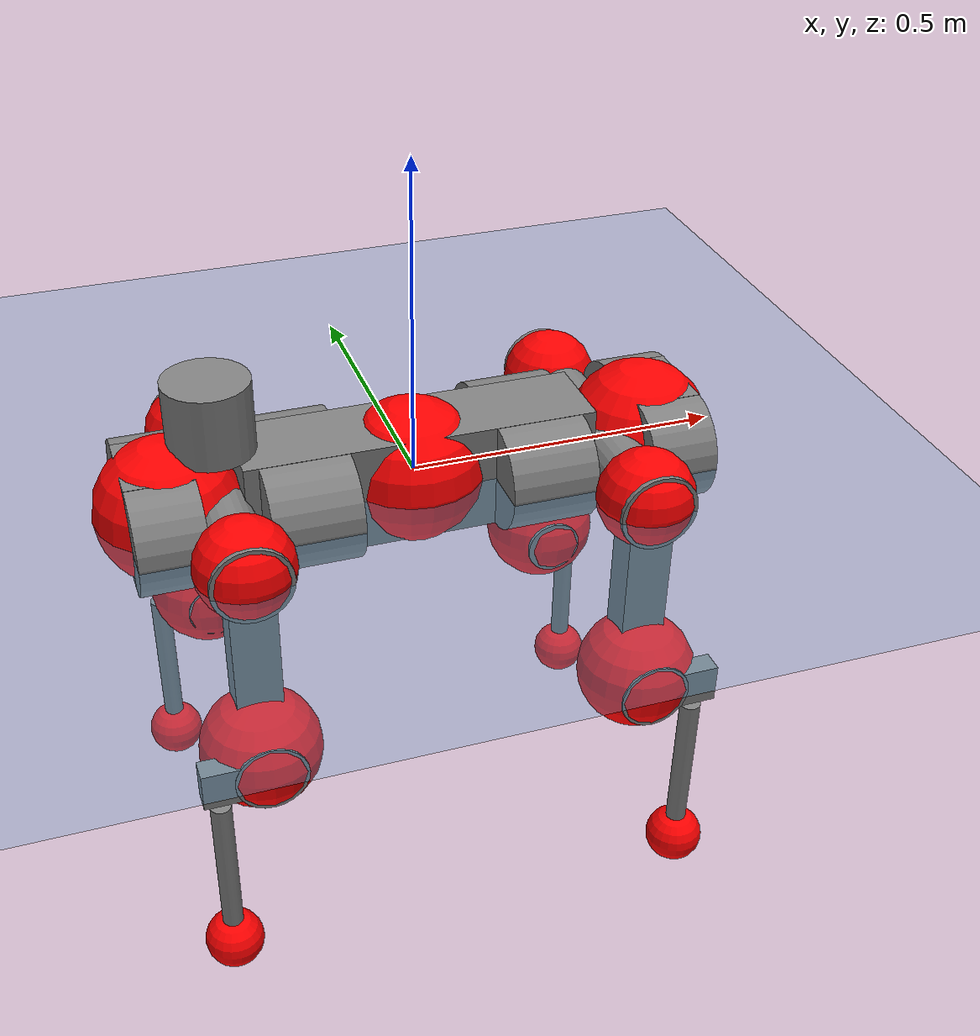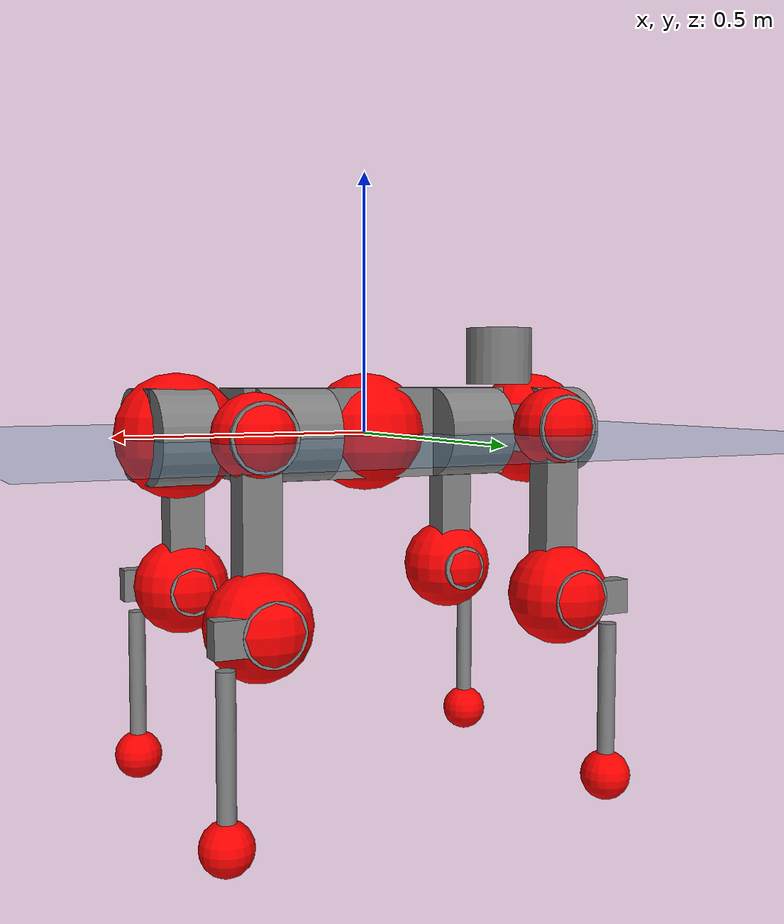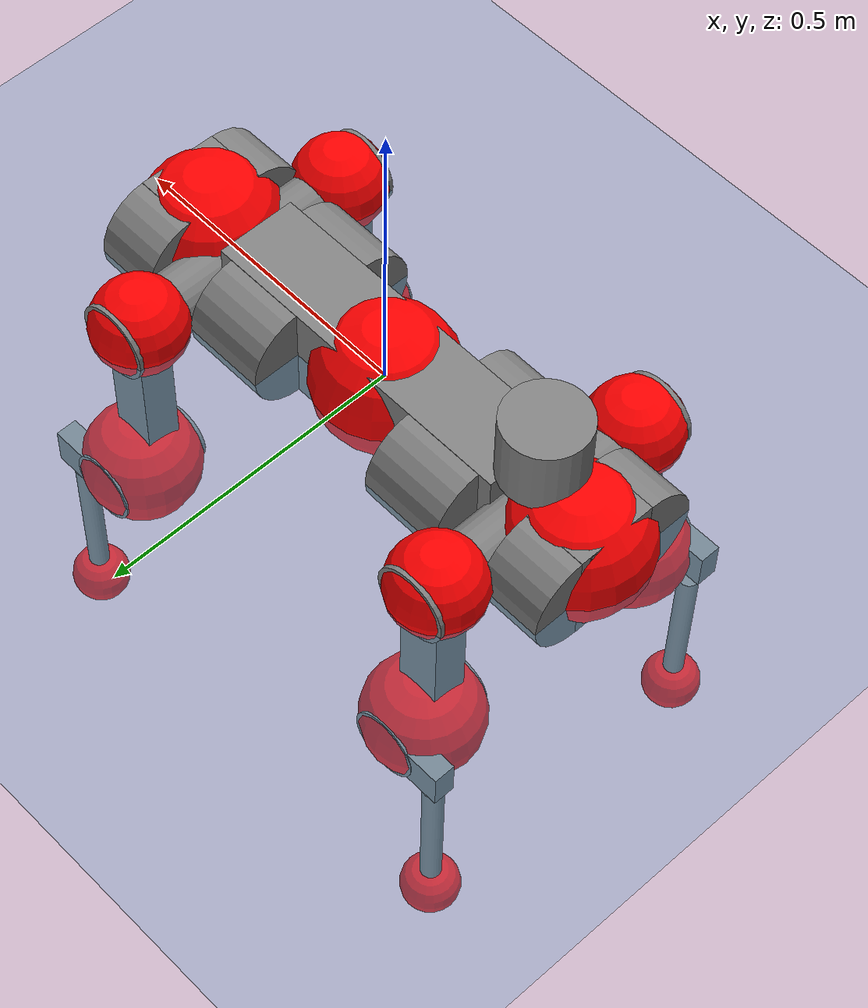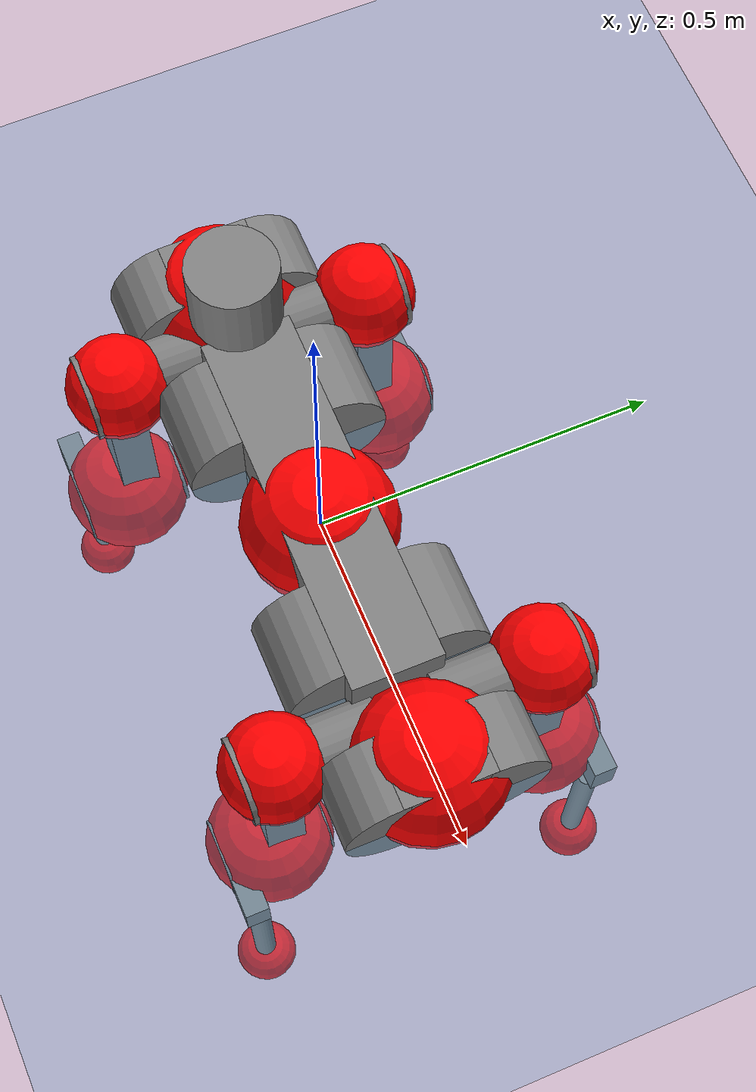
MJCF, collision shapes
<mujoco model="anymal_c">
  <compiler angle="radian" assetdir="assets" balanceinertia="true" inertiafromgeom="false"/>

  <option timestep="0.005" density="1.2" viscosity="2e-05"/>

  <size nkey="1"/>

  <visual>
    <quality shadowsize="8192"/>
    <map shadowclip="0.5"/>
  </visual>

  <default>
    <default class="/">
      <material specular="0" shininess="0.25"/>
      <geom contype="0" conaffinity="0" group="1" solref="-1000 -80"/>
      <site size="0.01 0.005 0.005" group="5"/>
      <general forcelimited="true" forcerange="-80 80" biastype="affine" gainprm="80" biasprm="0 -80 -2"/>
      <default class="anymal_c">
        <joint armature="0.01" damping="0.01" frictionloss="0.1"/>
        <default class="visual">
          <geom type="mesh" group="2"/>
          <default class="visual_zflip"/>
        </default>
        <default class="collision">
          <geom type="cylinder" group="3"/>
          <default class="foot">
            <geom size="0.03 0 0" type="sphere" condim="6" priority="1" friction="0.8 0.02 0.01" solimp="0.015 1 0.03"/>
          </default>
        </default>
      </default>
      <default class="reward_collision_sphere">
        <geom group="5" rgba="1 0 0 1"/>
      </default>
    </default>
  </default>

  <asset>
    <texture type="skybox" colorspace="auto" name="//unnamed_texture_0" builtin="gradient" rgb1="0.95 0.95 0.95" rgb2="0.95 0.95 0.95" width="100" height="600"/>
    <texture type="2d" colorspace="auto" name="texplane" builtin="checker" rgb1="0.345 0.575 0.748" rgb2="0.345 0.575 0.748" markrgb="1 1 1" width="512" height="512"/>
    <texture type="2d" colorspace="linear" name="base" file="base.png"/>
    <texture type="2d" colorspace="linear" name="top_shell" file="top_shell.png"/>
    <texture type="2d" colorspace="linear" name="bottom_shell" file="bottom_shell.png"/>
    <texture type="2d" colorspace="linear" name="remote" file="remote.png"/>
    <texture type="2d" colorspace="linear" name="hatch" file="hatch.png"/>
    <texture type="2d" colorspace="linear" name="handle" file="handle.png"/>
    <texture type="2d" colorspace="linear" name="face" file="face.png"/>
    <texture type="2d" colorspace="linear" name="battery" file="battery.png"/>
    <texture type="2d" colorspace="linear" name="lidar_cage" file="lidar_cage.png"/>
    <texture type="2d" colorspace="linear" name="depth_camera" file="depth_camera.png"/>
    <texture type="2d" colorspace="linear" name="wide_angle_camera" file="wide_angle_camera.png"/>
    <texture type="2d" colorspace="linear" name="lidar" file="lidar.png"/>
    <texture type="2d" colorspace="linear" name="drive" file="drive.png"/>
    <texture type="2d" colorspace="linear" name="hip_l" file="hip_l.png"/>
    <texture type="2d" colorspace="linear" name="shank_l" file="shank_l.png"/>
    <texture type="2d" colorspace="linear" name="foot" file="foot.png"/>
    <texture type="2d" colorspace="linear" name="thigh" file="thigh.png"/>
    <texture type="2d" colorspace="linear" name="shank_r" file="shank_r.png"/>
    <texture type="2d" colorspace="linear" name="hip_r" file="hip_r.png"/>
    <material name="MatPlane" class="/" texture="texplane" texuniform="true" texrepeat="2 2" specular="0.9" shininess="0.5"/>
    <material name="black_plastic" class="/" rgba="0.007 0.007 0.007 1"/>
    <material name="green" class="/" rgba="0.052 0.178 0.033 1"/>
    <material name="red" class="/" rgba="0.178 0.006 0.005 1"/>
    <material name="yellow" class="/" rgba="0.178 0.119 0.006 1"/>
    <material name="lwl" class="/" rgba="0.8 0.8 0.8 1"/>
    <material name="base" class="/" texture="base"/>
    <material name="top_shell" class="/" texture="top_shell"/>
    <material name="bottom_shell" class="/" texture="bottom_shell"/>
    <material name="hip_l" class="/" texture="hip_l"/>
    <material name="thigh" class="/" texture="thigh"/>
    <material name="shank_l" class="/" texture="shank_l"/>
    <material name="foot" class="/" texture="foot"/>
    <material name="hip_r" class="/" texture="hip_r"/>
    <material name="shank" class="/" texture="shank_r"/>
    <material name="hatch" class="/" texture="hatch"/>
    <material name="remote" class="/" texture="remote"/>
    <material name="handle" class="/" texture="handle"/>
    <material name="face" class="/" texture="face"/>
    <material name="depth_camera" class="/" texture="depth_camera"/>
    <material name="wide_angle_camera" class="/" texture="wide_angle_camera"/>
    <material name="battery" class="/" texture="battery"/>
    <material name="lidar_cage" class="/" texture="lidar_cage"/>
    <material name="lidar" class="/" texture="lidar"/>
    <material name="drive" class="/" texture="drive"/>
    <mesh name="base_0" class="/" file="base_0.obj"/>
    <mesh name="base_1" class="/" file="base_1.obj"/>
    <mesh name="base_2" class="/" file="base_2.obj"/>
    <mesh name="base_3" class="/" file="base_3.obj"/>
    <mesh name="base_4" class="/" file="base_4.obj"/>
    <mesh name="base_5" class="/" file="base_5.obj"/>
    <mesh name="top_shell" class="/" file="top_shell.obj"/>
    <mesh name="bottom_shell" class="/" file="bottom_shell.obj"/>
    <mesh name="remote" class="/" file="remote.obj"/>
    <mesh name="handle" class="/" file="handle.obj"/>
    <mesh name="face" class="/" file="face.obj"/>
    <mesh name="wide_angle_camera" class="/" file="wide_angle_camera.obj"/>
    <mesh name="depth_camera" class="/" file="depth_camera.obj"/>
    <mesh name="battery" class="/" file="battery.obj"/>
    <mesh name="lidar_cage" class="/" file="lidar_cage.obj"/>
    <mesh name="lidar" class="/" file="lidar.obj"/>
    <mesh name="drive" class="/" file="drive.obj"/>
    <mesh name="hip_l" class="/" file="hip_l.obj"/>
    <mesh name="thigh" class="/" file="thigh.obj"/>
    <mesh name="shank_l" class="/" file="shank_l.obj"/>
    <mesh name="foot" class="/" file="foot.obj"/>
    <mesh name="hip_r" class="/" file="hip_r.obj"/>
    <mesh name="hatch" class="/" file="hatch.obj"/>
    <mesh name="shank_r" class="/" file="shank_r.obj"/>
  </asset>

  <worldbody>
    <geom name="floor" class="/" size="100 100 0.125" type="plane" group="0" material="MatPlane"/>
    <light name="toplight_shadow" class="/" pos="0 0 5" dir="0.0990148 0.0990148 -0.990148" type="directional" ambient="0.04 0.04 0.04" diffuse="0.55 0.55 0.55" specular="0.12 0.12 0.12"/>
    <light name="toplight_fill" class="/" pos="0 0 5" dir="0.0990148 0.0990148 -0.990148" type="directional" castshadow="false" ambient="0.04 0.04 0.04" diffuse="0.3 0.3 0.3" specular="0.08 0.08 0.08"/>
    <body name="trunk" childclass="anymal_c" pos="-0.0023292 -0.0006725 0.00183261" quat="1 0.000168908 -0.000228672 -0.000467562">
      <inertial pos="0.00834891 0.0033785 0.0547241" quat="0.507212 0.491141 0.498167 0.503335" mass="15.7003" diaginertia="0.277078 0.35994 0.394939"/>
      <joint name="//unnamed_joint_0" type="free" armature="0" damping="0" frictionloss="0"/>
      <geom name="//unnamed_geom_1" class="visual" material="green" mesh="base_0"/>
      <geom name="//unnamed_geom_2" class="visual" material="yellow" mesh="base_1"/>
      <geom name="//unnamed_geom_3" class="visual" material="red" mesh="base_2"/>
      <geom name="//unnamed_geom_4" class="visual" material="black_plastic" mesh="base_3"/>
      <geom name="//unnamed_geom_5" class="visual" material="lwl" mesh="base_4"/>
      <geom name="//unnamed_geom_6" class="visual" material="base" mesh="base_5"/>
      <geom name="trunk_1" class="collision" size="0.276557 0.0667551 0.085828" type="box"/>
      <geom name="trunk_2" class="collision" size="0.085828 0.0691392" pos="0.184165 0.0626529 0" quat="0.707107 0 0.707107 0"/>
      <geom name="trunk_3" class="collision" size="0.085828 0.0691392" pos="-0.184165 0.0626529 0" quat="0.707107 0 0.707107 0"/>
      <geom name="trunk_4" class="collision" size="0.085828 0.0691392" pos="0.184165 -0.0626529 0" quat="0.707107 0 0.707107 0"/>
      <geom name="trunk_5" class="collision" size="0.085828 0.0691392" pos="-0.184165 -0.0626529 0" quat="0.707107 0 0.707107 0"/>
      <geom name="//unnamed_geom_12" class="visual" material="top_shell" mesh="top_shell"/>
      <geom name="//unnamed_geom_13" class="visual" material="bottom_shell" mesh="bottom_shell"/>
      <geom name="//unnamed_geom_14" class="visual" material="remote" mesh="remote"/>
      <geom name="//unnamed_geom_15" class="visual" material="handle" mesh="handle"/>
      <geom name="//unnamed_geom_16" class="visual" pos="0.350972 0 0" quat="1 0 0 0" material="face" mesh="face"/>
      <geom name="trunk_6" class="collision" size="0.0524504 0.0667551 0.085828" pos="0.397542 0 0" type="box"/>
      <geom name="//unnamed_geom_18" class="collision" size="0.085828 0.0524504" pos="0.397542 0.0626529 0" quat="0.707107 0 0.707107 0"/>
      <geom name="//unnamed_geom_19" class="collision" size="0.085828 0.0524504" pos="0.397542 -0.0626529 0" quat="0.707107 0 0.707107 0"/>
      <geom name="//unnamed_geom_20" class="visual" pos="0.390906 0 -0.0347497" quat="0.965926 0 0.258819 0" material="depth_camera" mesh="depth_camera"/>
      <geom name="//unnamed_geom_21" class="visual" pos="0.434375 0 0.0167538" material="wide_angle_camera" mesh="wide_angle_camera"/>
      <geom name="//unnamed_geom_22" class="visual_zflip" pos="-0.350972 0 0" quat="0 0 0 1" material="face" mesh="face"/>
      <geom name="trunk_7" class="collision" size="0.0524504 0.0667551 0.085828" pos="-0.397542 0 0" quat="0 0 0 1" type="box"/>
      <geom name="//unnamed_geom_24" class="collision" size="0.085828 0.0524504" pos="-0.397542 -0.0626529 0" quat="0 -0.707107 0 0.707107"/>
      <geom name="//unnamed_geom_25" class="collision" size="0.085828 0.0524504" pos="-0.397542 0.0626529 0" quat="0 -0.707107 0 0.707107"/>
      <geom name="//unnamed_geom_26" class="visual" pos="-0.390906 0 -0.0347497" quat="0 -0.258819 0 0.965926" material="depth_camera" mesh="depth_camera"/>
      <geom name="//unnamed_geom_27" class="visual_zflip" pos="-0.434375 0 0.0167538" quat="0 0 0 1" material="wide_angle_camera" mesh="wide_angle_camera"/>
      <geom name="//unnamed_geom_28" class="visual" material="battery" mesh="battery"/>
      <geom name="//unnamed_geom_29" class="visual" pos="0 0.0690801 0.0304411" quat="0.683013 -0.183013 0.183013 0.683013" material="depth_camera" mesh="depth_camera"/>
      <geom name="//unnamed_geom_30" class="visual" pos="0 -0.0690801 0.0304411" quat="0.683013 0.183013 0.183013 -0.683013" material="depth_camera" mesh="depth_camera"/>
      <geom name="//unnamed_geom_31" class="visual" pos="-0.308212 0 0.0822579" quat="1 0 0 0" material="lidar_cage" mesh="lidar_cage"/>
      <geom name="trunk_8" class="collision" size="0.0667551 0.0572186" pos="-0.308212 0 0.149407"/>
      <geom name="//unnamed_geom_33" class="visual" pos="-0.308212 1.89784e-05 0.159144" quat="0.707107 0 0 -0.707107" material="lidar" mesh="lidar"/>
      <geom name="//unnamed_geom_34" class="visual" pos="0.253936 0.0931639 -3.866e-09" quat="0.258819 0.965926 0 0" material="drive" mesh="drive"/>
      <geom name="//unnamed_geom_35" class="visual" pos="0.253936 -0.0931639 3.866e-09" quat="0.258819 -0.965926 0 0" material="drive" mesh="drive"/>
      <geom name="//unnamed_geom_36" class="visual" pos="-0.253936 0.0931639 3.866e-09" quat="0 0 0.965926 -0.258819" material="drive" mesh="drive"/>
      <geom name="//unnamed_geom_37" class="visual" pos="-0.253936 -0.0931639 -3.866e-09" quat="0 0 -0.965926 -0.258819" material="drive" mesh="drive"/>
      <geom name="//unnamed_geom_38" class="visual" pos="0.0982213 0 0.0816984" quat="1 0 0 0" material="hatch" mesh="hatch"/>
      <geom name="//unnamed_geom_39" class="reward_collision_sphere" size="0.114437"/>
      <geom name="//unnamed_geom_40" class="reward_collision_sphere" size="0.114437" pos="0.381031 0 0"/>
      <geom name="//unnamed_geom_41" class="reward_collision_sphere" size="0.114437" pos="-0.381031 0 0"/>
      <site name="imu" pos="0.18859 0.00548931 0.0736135" size="0.00953644"/>
      <camera name="track" pos="0 -1.79008 0" quat="0.707107 0.707107 0 0" mode="trackcom"/>
      <camera name="ego_camera" pos="0.381031 0 -0.0447662" quat="-0.5 -0.5 0.5 0.5"/>
      <body name="LF_HIP" pos="0.256006 0.0954328 -0.00011243" quat="0.258533 0.966002 0.00109323 2.46962e-05">
        <inertial pos="0.0477539 -0.0117296 -0.010803" quat="-0.128283 0.709524 -0.13531 0.679566" mass="2.61723" diaginertia="0.00273784 0.00314258 0.00619241"/>
        <joint name="LF_HAA" pos="0 0 0" axis="0.999947 0.00978675 0.0031256" stiffness="0.00311095" range="-0.725858 0.515965" armature="0.00993837" damping="0.00629511" frictionloss="0.0996856"/>
        <geom name="//unnamed_geom_42" class="visual" pos="0 -0.000227419 3.73534e-05" quat="0.258819 -0.965926 0 0" material="hip_l" mesh="hip_l"/>
        <geom name="//unnamed_geom_43" class="visual" pos="0.0507194 -0.062173 -0.0375533" quat="0.183013 -0.683013 0.683013 0.183013" material="drive" mesh="drive"/>
        <geom name="//unnamed_geom_44" class="collision" size="0.0476822 0.0667551" pos="0.0507194 -0.0107045 -0.00772777" quat="-0.353553 -0.612372 0.612372 -0.353553"/>
        <body name="LF_THIGH" pos="0.0506744 -0.069853 -0.0465752" quat="0.181185 -0.682951 0.683473 0.183343">
          <inertial pos="0.0273858 -0.000244819 -0.274691" quat="0.991928 -0.00888221 -0.0878394 0.0910209" mass="2.64659" diaginertia="0.0128961 0.0179724 0.00737736"/>
          <joint name="LF_HFE" pos="0 0 0" axis="0.999961 0.00163132 0.00870733" stiffness="0.0035353" range="-3.20955 3.12331" armature="0.00846848" damping="0" frictionloss="0.0950405"/>
          <geom name="//unnamed_geom_45" class="visual" pos="-0.000961111 -1.51449e-06 0" quat="0.707107 0 0 -0.707107" material="thigh" mesh="thigh"/>
          <geom name="//unnamed_geom_46" class="collision" size="0.0619869 0.0381458" pos="0.0338694 0 0" quat="0.5 0.5 -0.5 -0.5"/>
          <geom name="//unnamed_geom_47" class="collision" size="0.0357617 0.0286093 0.134763" pos="0.025402 0 -0.158152" quat="0.707107 0 0 -0.707107" type="box"/>
          <geom name="//unnamed_geom_48" class="visual" pos="0.0849275 0 -0.318959" quat="1 0 0 0" material="drive" mesh="drive"/>
          <geom name="//unnamed_geom_49" class="collision" size="0.0476822 0.0667551" pos="0.0256561 0 -0.318959" quat="0.707107 0 0.707107 0"/>
          <geom name="//unnamed_geom_50" class="reward_collision_sphere" size="0.0762915" pos="0.0211684 0 0"/>
          <body name="LF_SHANK" pos="0.0855158 -0.0036408 -0.320889" quat="0.999999 0.00025977 -0.000646816 0.00105618">
            <inertial pos="0.00533225 -0.0522692 -0.0911308" quat="0.992921 -0.11593 -0.00112052 -0.0258253" mass="0.49027" diaginertia="0.00444143 0.00526543 0.00196378"/>
            <joint name="LF_KFE" pos="0 0 0" axis="0.999934 0.00583465 -0.00994316" stiffness="0.0158971" range="-3.15519 3.13028" armature="0.0103843" damping="0.0189331" frictionloss="0.0939972"/>
            <geom name="//unnamed_geom_51" class="visual" pos="-0.000313397 -0.00167105 0" quat="0.707107 0 0 -0.707107" material="shank_l" mesh="shank_l"/>
            <geom name="LF_kfe_act" class="collision" size="0.0572186 0.0190729" pos="0.0169347 0 0" quat="0.5 0.5 -0.5 -0.5"/>
            <geom name="//unnamed_geom_53" class="collision" size="0.0548336 0.0321855 0.0181192" pos="0.0169347 -0.051464 0" quat="0.5 0.5 -0.5 -0.5" type="box"/>
            <geom name="//unnamed_geom_54" class="visual" pos="0.01105 -0.0792574 -0.378241" quat="0.382683 0 0 -0.92388" material="foot" mesh="foot"/>
            <geom name="LF_calf" class="collision" size="0.0166888 0.134704" pos="0.0110499 -0.0787189 -0.189121" quat="0.707107 0 0 -0.707107"/>
            <geom name="LF_foot" class="foot" size="0.0303081" pos="0.0110499 -0.0787189 -0.35306" quat="0.707107 0 0 -0.707107"/>
            <geom name="//unnamed_geom_57" class="reward_collision_sphere" size="0.0953644" pos="-0.0423367 0 0"/>
            <geom name="//unnamed_geom_58" class="reward_collision_sphere" size="0.0476822" pos="0.0110499 -0.0787189 -0.35306"/>
            <site name="LF_foot" class="foot" pos="0.0110499 -0.0787189 -0.35306" quat="0.707107 0 0 -0.707107" size="0.00953644"/>
          </body>
        </body>
      </body>
      <body name="RF_HIP" pos="0.258691 -0.0932575 -0.00267686" quat="0.258853 -0.965917 -0.000313703 -0.000377838">
        <inertial pos="0.0485888 0.0201877 -0.00850402" quat="0.143308 0.68689 0.149081 0.69672" mass="2.43466" diaginertia="0.00270307 0.00275506 0.00608576"/>
        <joint name="RF_HAA" pos="0 0 0" axis="0.999922 -0.00256296 0.0121976" stiffness="0.00128701" range="-0.44734 0.735139" armature="0.00888596" damping="0.0174164" frictionloss="0.103383"/>
        <geom name="//unnamed_geom_59" class="visual" pos="0 0.000227417 3.73533e-05" quat="0.258819 0.965926 0 0" material="hip_r" mesh="hip_r"/>
        <geom name="//unnamed_geom_60" class="visual" pos="0.0507194 0.062173 -0.0375533" quat="0.183013 0.683013 0.683013 -0.183013" material="drive" mesh="drive"/>
        <geom name="//unnamed_geom_61" class="collision" size="0.0476822 0.0667551" pos="0.0507194 0.0107045 -0.00772777" quat="-0.353553 0.612372 0.612372 0.353553"/>
        <body name="RF_THIGH" pos="0.051138 0.064589 -0.0438499" quat="0.182566 0.684089 0.682201 -0.182465">
          <inertial pos="0.021599 -0.00216721 -0.275019" quat="0.992838 -0.00520139 -0.0799686 0.0886025" mass="2.51013" diaginertia="0.0128508 0.0172337 0.00672371"/>
          <joint name="RF_HFE" pos="0 0 0" axis="1 0.000915701 -8.49361e-05" stiffness="0.00790301" range="-3.10554 3.09376" armature="0.00984102" damping="0.00689255" frictionloss="0.101657"/>
          <geom name="//unnamed_geom_62" class="visual" pos="-0.000961111 -1.51449e-06 0" quat="0.707107 0 0 -0.707107" material="thigh" mesh="thigh"/>
          <geom name="//unnamed_geom_63" class="collision" size="0.0619869 0.0381458" pos="0.0338694 0 0" quat="0.5 0.5 0.5 0.5"/>
          <geom name="//unnamed_geom_64" class="collision" size="0.0357617 0.0286093 0.134763" pos="0.025402 0 -0.158152" quat="0.707107 0 0 0.707107" type="box"/>
          <geom name="//unnamed_geom_65" class="visual" pos="0.0849275 0 -0.318959" quat="1 0 0 0" material="drive" mesh="drive"/>
          <geom name="//unnamed_geom_66" class="collision" size="0.0476822 0.0667551" pos="0.0256561 0 -0.318959" quat="0.707107 0 0.707107 0"/>
          <geom name="//unnamed_geom_67" class="reward_collision_sphere" size="0.0762915" pos="0.0211684 0 0"/>
          <body name="RF_SHANK" pos="0.0849403 -0.000549384 -0.318309" quat="1 1.61529e-05 -1.19102e-05 7.28083e-06">
            <inertial pos="0.00667888 0.0546183 -0.0898212" quat="0.990415 0.132721 0.0173705 0.0340714" mass="0.495685" diaginertia="0.00437586 0.00509482 0.00189201"/>
            <joint name="RF_KFE" pos="0 0 0" axis="0.99998 -0.00631269 0.000316017" stiffness="0.0217832" range="-3.04663 3.14383" armature="0.00828655" damping="0" frictionloss="0.100436"/>
            <geom name="//unnamed_geom_68" class="visual" pos="-0.000313396 0.00167105 0" quat="0.707107 0 0 0.707107" material="shank" mesh="shank_r"/>
            <geom name="RF_kfe_act" class="collision" size="0.0572186 0.0190729" pos="0.0169347 0 0" quat="0.5 0.5 0.5 0.5"/>
            <geom name="//unnamed_geom_70" class="collision" size="0.0548336 0.0321855 0.0181192" pos="0.0169347 0.051464 0" quat="0.5 0.5 0.5 0.5" type="box"/>
            <geom name="//unnamed_geom_71" class="visual" pos="0.0110498 0.0792574 -0.378241" quat="0.382683 0 0 0.92388" material="foot" mesh="foot"/>
            <geom name="RF_calf" class="collision" size="0.0166888 0.134704" pos="0.0110499 0.0787189 -0.189121" quat="0.707107 0 0 0.707107"/>
            <geom name="RF_foot" class="foot" size="0.0306106" pos="0.0110499 0.0787189 -0.35306" quat="0.707107 0 0 0.707107"/>
            <geom name="//unnamed_geom_74" class="reward_collision_sphere" size="0.0953644" pos="-0.0423367 0 0"/>
            <geom name="//unnamed_geom_75" class="reward_collision_sphere" size="0.0476822" pos="0.0110499 0.0787189 -0.35306"/>
            <site name="RF_foot" class="foot" pos="0.0110499 0.0787189 -0.35306" quat="0.707107 0 0 0.707107" size="0.00953644"/>
          </body>
        </body>
      </body>
      <body name="LH_HIP" pos="-0.25746 0.0945446 0.0032002" quat="0.000142787 3.46055e-05 0.965906 -0.258894">
        <inertial pos="0.0477985 0.0125277 -0.00421279" quat="0.133233 0.674488 0.119225 0.71631" mass="2.25815" diaginertia="0.00220301 0.00257702 0.00541065"/>
        <joint name="LH_HAA" pos="0 0 0" axis="0.999928 -0.00709595 0.00969402" range="-0.491608 0.757877" armature="0.00845796" damping="0.0264493" frictionloss="0.0937661"/>
        <geom name="//unnamed_geom_76" class="visual" pos="0 0.000227417 3.73533e-05" quat="-0.258819 -0.965926 0 0" material="hip_r" mesh="hip_r"/>
        <geom name="//unnamed_geom_77" class="visual" pos="0.0507194 0.062173 -0.0375533" quat="0.183013 0.683013 0.683013 -0.183013" material="drive" mesh="drive"/>
        <geom name="//unnamed_geom_78" class="collision" size="0.0476822 0.0667551" pos="0.0507194 0.0107045 -0.00772777" quat="-0.353553 0.612372 0.612372 0.353553"/>
        <body name="LH_THIGH" pos="0.050252 0.0642713 -0.045855" quat="0.183108 0.68292 0.682898 -0.183689">
          <inertial pos="0.0323176 0.0018577 -0.269851" quat="0.992608 -0.00681818 -0.0825105 0.0887441" mass="2.65784" diaginertia="0.0143329 0.017172 0.00762029"/>
          <joint name="LH_HFE" pos="0 0 0" axis="0.999983 0.00355477 0.00463046" range="-3.1521 3.15627" armature="0.0107267" damping="0.0141829" frictionloss="0.0970894"/>
          <geom name="//unnamed_geom_79" class="visual" pos="-0.000961111 -1.51449e-06 0" quat="0.707107 0 0 -0.707107" material="thigh" mesh="thigh"/>
          <geom name="//unnamed_geom_80" class="collision" size="0.0619869 0.0381458" pos="0.0338694 0 0" quat="0.5 0.5 -0.5 -0.5"/>
          <geom name="//unnamed_geom_81" class="collision" size="0.0357617 0.0286093 0.134763" pos="0.025402 0 -0.158152" quat="0.707107 0 0 -0.707107" type="box"/>
          <geom name="//unnamed_geom_82" class="visual" pos="0.0849275 0 -0.318959" quat="1 0 0 0" material="drive" mesh="drive"/>
          <geom name="//unnamed_geom_83" class="collision" size="0.0476822 0.0667551" pos="0.0256561 0 -0.318959" quat="0.707107 0 0.707107 0"/>
          <geom name="//unnamed_geom_84" class="reward_collision_sphere" size="0.0762915" pos="0.0211684 0 0"/>
          <body name="LH_SHANK" pos="0.0838871 0.00139832 -0.32155" quat="1 8.5176e-05 -8.51405e-05 0.000147368">
            <inertial pos="0.00519925 0.0512534 -0.0922003" quat="0.993197 0.113598 -0.00196531 0.0255281" mass="0.470466" diaginertia="0.00412148 0.00468186 0.00185591"/>
            <joint name="LH_KFE" pos="0 0 0" axis="0.999914 0.0122584 0.0046041" stiffness="0.00288017" range="-3.20487 3.1627" armature="0.00742085" damping="0" frictionloss="0.10851"/>
            <geom name="//unnamed_geom_85" class="visual" pos="-0.000313396 0.00167105 0" quat="-0.707107 0 0 -0.707107" material="shank" mesh="shank_r"/>
            <geom name="LH_kfe_act" class="collision" size="0.0572186 0.0190729" pos="0.0169347 0 0" quat="0.5 0.5 -0.5 -0.5"/>
            <geom name="//unnamed_geom_87" class="collision" size="0.0548336 0.0321855 0.0181192" pos="0.0169347 0.051464 0" quat="0.5 0.5 -0.5 -0.5" type="box"/>
            <geom name="//unnamed_geom_88" class="visual" pos="0.0110498 0.0792574 -0.378241" quat="-0.382683 0 0 -0.92388" material="foot" mesh="foot"/>
            <geom name="LH_calf" class="collision" size="0.0166888 0.134704" pos="0.0110499 0.0787189 -0.189121" quat="0.707107 0 0 -0.707107"/>
            <geom name="LH_foot" class="foot" size="0.0311191" pos="0.0110499 0.0787189 -0.35306" quat="0.707107 0 0 -0.707107"/>
            <geom name="//unnamed_geom_91" class="reward_collision_sphere" size="0.0953644" pos="-0.0423367 0 0"/>
            <geom name="//unnamed_geom_92" class="reward_collision_sphere" size="0.0476822" pos="0.0110499 0.0787189 -0.35306"/>
            <site name="LH_foot" class="foot" pos="0.0110499 0.0787189 -0.35306" quat="0.707107 0 0 -0.707107" size="0.00953644"/>
          </body>
        </body>
      </body>
      <body name="RH_HIP" pos="-0.260167 -0.091026 0.00132287" quat="0.000470802 -0.00062804 -0.965854 -0.259084">
        <inertial pos="0.0481635 -0.0134164 -0.00432515" quat="-0.152833 0.692639 -0.141355 0.690588" mass="2.50041" diaginertia="0.00271849 0.00302226 0.00622756"/>
        <joint name="RH_HAA" pos="0 0 0" axis="0.999783 0.0192164 -0.00809442" range="-0.645241 0.498875" armature="0.00879218" damping="0.00773941" frictionloss="0.0937875"/>
        <geom name="//unnamed_geom_93" class="visual" pos="0 -0.000227419 3.73534e-05" quat="-0.258819 0.965926 0 0" material="hip_l" mesh="hip_l"/>
        <geom name="//unnamed_geom_94" class="visual" pos="0.0507194 -0.062173 -0.0375533" quat="-0.183013 0.683013 -0.683013 -0.183013" material="drive" mesh="drive"/>
        <geom name="//unnamed_geom_95" class="collision" size="0.0476822 0.0667551" pos="0.0507194 -0.0107045 -0.00772777" quat="0.353553 0.612372 -0.612372 0.353553"/>
        <body name="RH_THIGH" pos="0.0454873 -0.0632686 -0.0430016" quat="-0.181764 0.682732 -0.683684 -0.182796">
          <inertial pos="0.0272688 -0.00011062 -0.272478" quat="0.992864 -0.0035587 -0.0826825 0.0858628" mass="2.7417" diaginertia="0.0135677 0.0169225 0.00719127"/>
          <joint name="RH_HFE" pos="0 0 0" axis="0.999923 0.00801822 0.00947385" range="-3.14453 3.1029" armature="0.0083632" damping="0.00930343" frictionloss="0.0992164"/>
          <geom name="//unnamed_geom_96" class="visual" pos="-0.000961111 -1.51449e-06 0" quat="0.707107 0 0 -0.707107" material="thigh" mesh="thigh"/>
          <geom name="//unnamed_geom_97" class="collision" size="0.0619869 0.0381458" pos="0.0338694 0 0" quat="0.5 0.5 0.5 0.5"/>
          <geom name="//unnamed_geom_98" class="collision" size="0.0357617 0.0286093 0.134763" pos="0.025402 0 -0.158152" quat="0.707107 0 0 0.707107" type="box"/>
          <geom name="//unnamed_geom_99" class="visual" pos="0.0849275 0 -0.318959" quat="1 0 0 0" material="drive" mesh="drive"/>
          <geom name="//unnamed_geom_100" class="collision" size="0.0476822 0.0667551" pos="0.0256561 0 -0.318959" quat="0.707107 0 0.707107 0"/>
          <geom name="//unnamed_geom_101" class="reward_collision_sphere" size="0.0762915" pos="0.0211684 0 0"/>
          <body name="RH_SHANK" pos="0.0860985 -0.00253723 -0.319812" quat="0.999998 0.000468563 0.00194514 0.000927327">
            <inertial pos="0.00207894 -0.0558986 -0.0880552" quat="0.99352 -0.109902 0.00652972 -0.0282295" mass="0.495299" diaginertia="0.00437511 0.0052987 0.00193127"/>
            <joint name="RH_KFE" pos="0 0 0" axis="0.999815 -0.0192091 0.000629682" stiffness="0.00807286" range="-3.1449 3.06011" armature="0.00948088" damping="0" frictionloss="0.100683"/>
            <geom name="//unnamed_geom_102" class="visual" pos="-0.000313397 -0.00167105 0" quat="0.707107 0 0 -0.707107" material="shank_l" mesh="shank_l"/>
            <geom name="RH_kfe_act" class="collision" size="0.0572186 0.0190729" pos="0.0169347 0 0" quat="0.5 0.5 0.5 0.5"/>
            <geom name="//unnamed_geom_104" class="collision" size="0.0548336 0.0321855 0.0181192" pos="0.0169347 -0.051464 0" quat="0.5 0.5 0.5 0.5" type="box"/>
            <geom name="//unnamed_geom_105" class="visual" pos="0.01105 -0.0792574 -0.378241" quat="0.382683 0 0 -0.92388" material="foot" mesh="foot"/>
            <geom name="RH_calf" class="collision" size="0.0166888 0.134704" pos="0.0110499 -0.0787189 -0.189121" quat="0.707107 0 0 0.707107"/>
            <geom name="RH_foot" class="foot" size="0.0292072" pos="0.0110499 -0.0787189 -0.35306" quat="0.707107 0 0 0.707107"/>
            <geom name="//unnamed_geom_108" class="reward_collision_sphere" size="0.0953644" pos="-0.0423367 0 0"/>
            <geom name="//unnamed_geom_109" class="reward_collision_sphere" size="0.0476822" pos="0.0110499 -0.0787189 -0.35306"/>
            <site name="RH_foot" class="foot" pos="0.0110499 -0.0787189 -0.35306" quat="0.707107 0 0 0.707107" size="0.00953644"/>
          </body>
        </body>
      </body>
    </body>
  </worldbody>

  <contact>
    <pair class="/" geom1="floor" geom2="LF_foot" name="//unnamed_contact_0"/>
    <pair class="/" geom1="floor" geom2="RF_foot" name="//unnamed_contact_1"/>
    <pair class="/" geom1="floor" geom2="LH_foot" name="//unnamed_contact_2"/>
    <pair class="/" geom1="floor" geom2="RH_foot" name="//unnamed_contact_3"/>
  </contact>

  <actuator>
    <general name="LF_HAA" class="/" joint="LF_HAA" forcerange="-82.4236 82.4236" gainprm="75.9194" biasprm="0 -75.9194 -1.85867"/>
    <general name="LF_HFE" class="/" joint="LF_HFE" forcerange="-90.3416 90.3416" gainprm="75.9194" biasprm="0 -75.9194 -1.85867"/>
    <general name="LF_KFE" class="/" joint="LF_KFE" forcerange="-71.0653 71.0653" gainprm="75.9194" biasprm="0 -75.9194 -1.85867"/>
    <general name="RF_HAA" class="/" joint="RF_HAA" forcerange="-79.9387 79.9387" gainprm="75.9194" biasprm="0 -75.9194 -1.85867"/>
    <general name="RF_HFE" class="/" joint="RF_HFE" forcerange="-72.8147 72.8147" gainprm="75.9194" biasprm="0 -75.9194 -1.85867"/>
    <general name="RF_KFE" class="/" joint="RF_KFE" forcerange="-69.6701 69.6701" gainprm="75.9194" biasprm="0 -75.9194 -1.85867"/>
    <general name="LH_HAA" class="/" joint="LH_HAA" forcerange="-78.755 78.755" gainprm="75.9194" biasprm="0 -75.9194 -1.85867"/>
    <general name="LH_HFE" class="/" joint="LH_HFE" forcerange="-81.0931 81.0931" gainprm="75.9194" biasprm="0 -75.9194 -1.85867"/>
    <general name="LH_KFE" class="/" joint="LH_KFE" forcerange="-81.9533 81.9533" gainprm="75.9194" biasprm="0 -75.9194 -1.85867"/>
    <general name="RH_HAA" class="/" joint="RH_HAA" forcerange="-71.9996 71.9996" gainprm="75.9194" biasprm="0 -75.9194 -1.85867"/>
    <general name="RH_HFE" class="/" joint="RH_HFE" forcerange="-67.0859 67.0859" gainprm="75.9194" biasprm="0 -75.9194 -1.85867"/>
    <general name="RH_KFE" class="/" joint="RH_KFE" forcerange="-83.6904 83.6904" gainprm="75.9194" biasprm="0 -75.9194 -1.85867"/>
  </actuator>

  <sensor>
    <gyro site="imu" name="imu_angular_velocity"/>
    <velocimeter site="imu" name="imu_linear_velocity"/>
    <framelinvel objtype="site" objname="LF_foot" name="LF_foot_global_linear_velocity"/>
    <framelinvel objtype="site" objname="RF_foot" name="RF_foot_global_linear_velocity"/>
    <framelinvel objtype="site" objname="LH_foot" name="LH_foot_global_linear_velocity"/>
    <framelinvel objtype="site" objname="RH_foot" name="RH_foot_global_linear_velocity"/>
  </sensor>

  <keyframe>
    <key name="home" qpos="0 0 0.55 1 0 0 0 0 0.4 -0.8 0 -0.4 0.8 0 -0.4 0.8 0 0.4 -0.8"/>
  </keyframe>
</mujoco>
